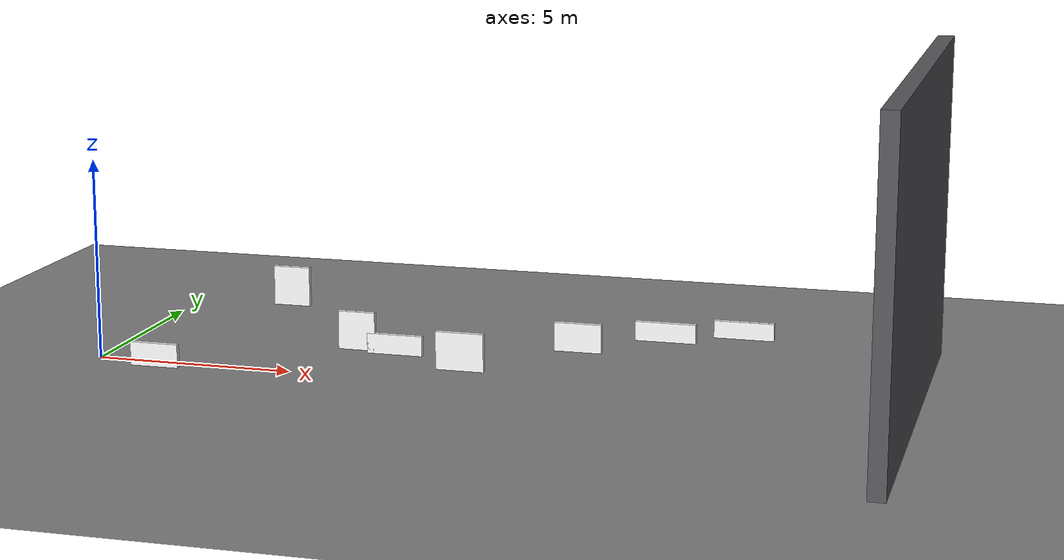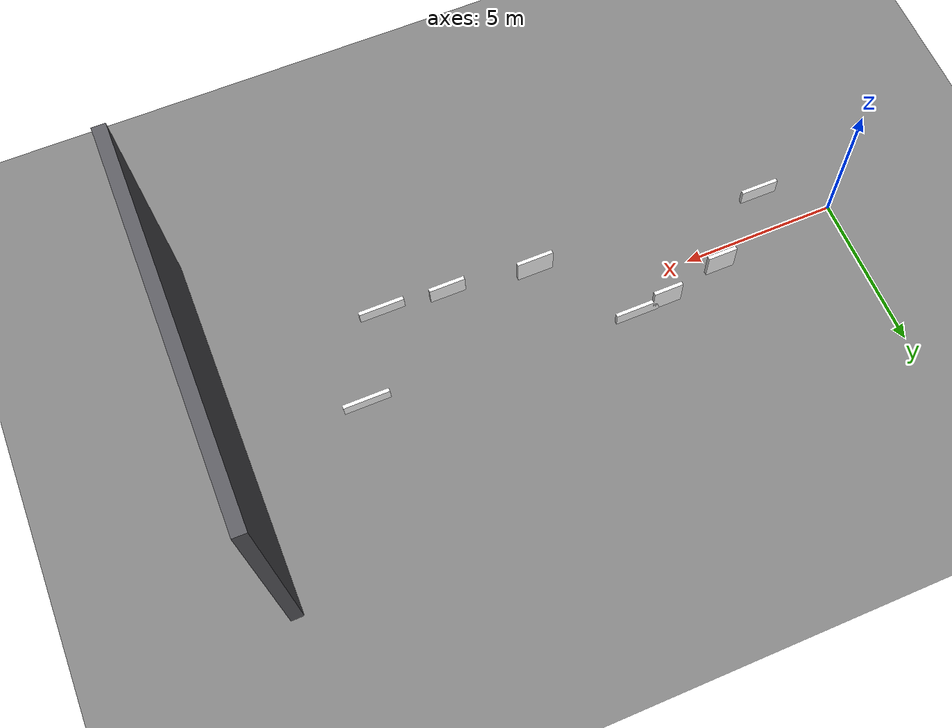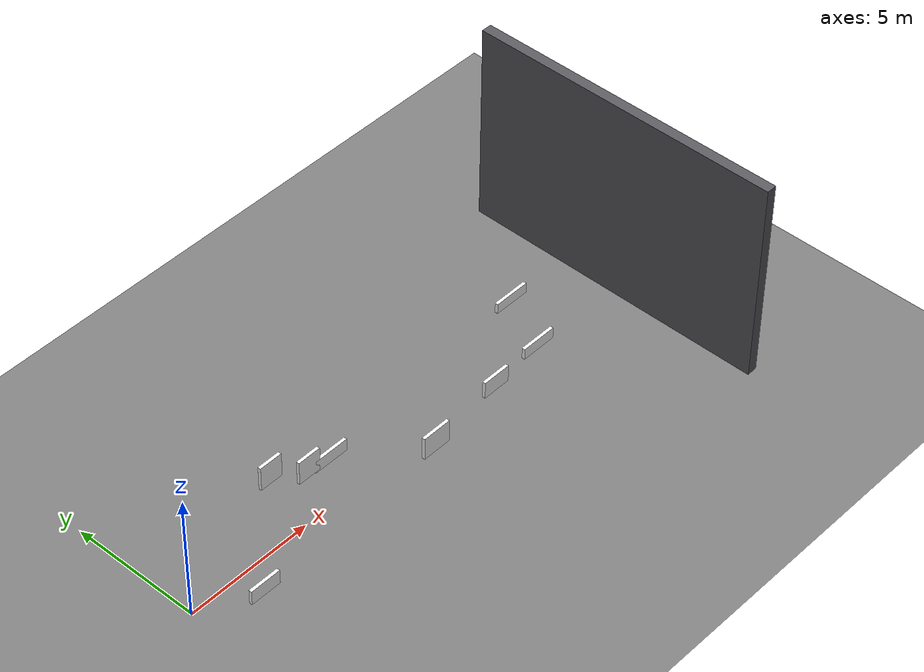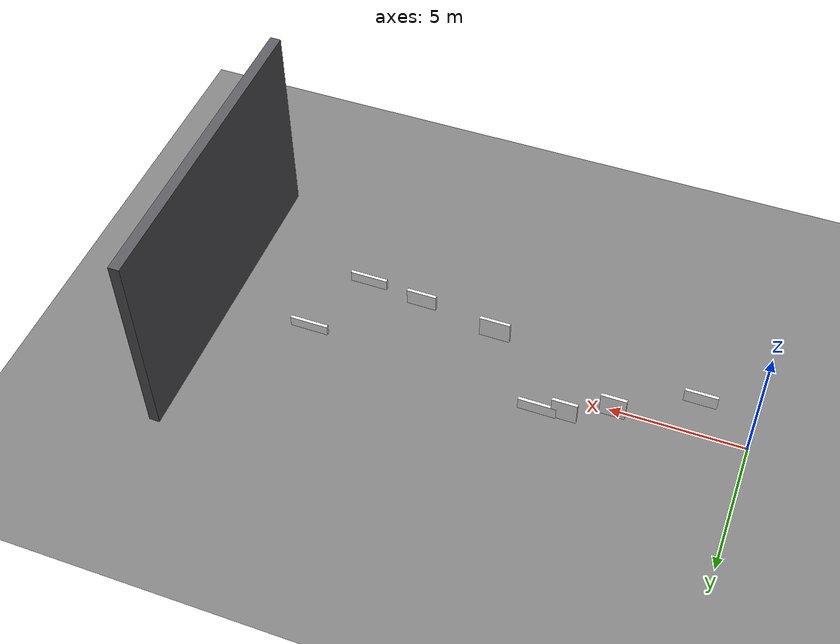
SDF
<sdf version="1.9">
 <world name="tunnel_world">
  <model name="ground_plane">
   <static>true</static>
   <link name="ground">
    <collision name="ground_collision">
     <geometry><plane><normal>0 0 1</normal><size>100 100</size></plane></geometry>
    </collision>
    <visual name="ground_visual">
     <geometry><plane><normal>0 0 1</normal><size>100 100</size></plane></geometry>
     <material>
      <ambient>0.5 0.5 0.5</ambient>
      <diffuse>0.50 0.50 0.50 1</diffuse>
      <emissive>0.08 0.08 0.08 1</emissive>
      <specular>0.05 0.05 0.05 1</specular>
      <pbr>
       <metal>
        <albedo_map>file:///home/ylf/workspace/inspection_robot/worlds/textures/tunnel_concrete_floor.png</albedo_map>
        <metalness>0.0</metalness>
        <roughness>0.9</roughness>
       </metal>
      </pbr>
     </material>
    </visual>
   </link>
  </model>
  <model name="tunnel_end_wall_far">
   <static>true</static>
   <pose>20 0 3.5 0 0 0</pose>
   <link name="wall">
    <visual name="visual">
     <geometry><box><size>0.4 12 9</size></box></geometry>
     <material>
      <diffuse>0.35 0.35 0.37 1</diffuse>
      <emissive>0.06 0.06 0.06 1</emissive>
      <ambient>0.35 0.35 0.37</ambient>
     </material>
    </visual>
    <collision name="collision"><geometry><box><size>0.4 12 9</size></box></geometry></collision>
   </link>
  </model>
  <model name="defect_spalling_01">
   <static>true</static>
   <pose>2.0 -1.192 0.535 0 0 0</pose>
   <link name="link">
    <visual name="visual">
     <geometry><box><size>1.218 0.12 0.58</size></box></geometry>
     <material>
      <ambient>1 1 1 1</ambient>
      <diffuse>1 1 1 1</diffuse>
      <emissive>0.05 0.05 0.05 1</emissive>
      <specular>0.05 0.05 0.05 1</specular>
      <pbr>
       <metal>
        <albedo_map>file:///home/ylf/workspace/inspection_robot/data_gen/textures_spalling/spalling_4.png</albedo_map>
        <metalness>0.0</metalness>
        <roughness>0.9</roughness>
       </metal>
      </pbr>
     </material>
    </visual>
    <collision name="collision"><geometry><box><size>1.218 0.12 0.58</size></box></geometry></collision>
   </link>
  </model>
  <model name="defect_spalling_02">
   <static>true</static>
   <pose>4.685 1.192 1.869 0 0 0</pose>
   <link name="link">
    <visual name="visual">
     <geometry><box><size>0.915 0.12 0.965</size></box></geometry>
     <material>
      <ambient>1 1 1 1</ambient>
      <diffuse>1 1 1 1</diffuse>
      <emissive>0.05 0.05 0.05 1</emissive>
      <specular>0.05 0.05 0.05 1</specular>
      <pbr>
       <metal>
        <albedo_map>file:///home/ylf/workspace/inspection_robot/data_gen/textures_spalling/spalling_1.png</albedo_map>
        <metalness>0.0</metalness>
        <roughness>0.9</roughness>
       </metal>
      </pbr>
     </material>
    </visual>
    <collision name="collision"><geometry><box><size>0.915 0.12 0.965</size></box></geometry></collision>
   </link>
  </model>
  <model name="defect_spalling_03">
   <static>true</static>
   <pose>6.355 1.192 0.838 0 0 0</pose>
   <link name="link">
    <visual name="visual">
     <geometry><box><size>0.935 0.12 0.957</size></box></geometry>
     <material>
      <ambient>1 1 1 1</ambient>
      <diffuse>1 1 1 1</diffuse>
      <emissive>0.05 0.05 0.05 1</emissive>
      <specular>0.05 0.05 0.05 1</specular>
      <pbr>
       <metal>
        <albedo_map>file:///home/ylf/workspace/inspection_robot/data_gen/textures_spalling/spalling_4.png</albedo_map>
        <metalness>0.0</metalness>
        <roughness>0.9</roughness>
       </metal>
      </pbr>
     </material>
    </visual>
    <collision name="collision"><geometry><box><size>0.935 0.12 0.957</size></box></geometry></collision>
   </link>
  </model>
  <model name="defect_spalling_04">
   <static>true</static>
   <pose>7.336 1.192 0.551 0 0 0</pose>
   <link name="link">
    <visual name="visual">
     <geometry><box><size>1.413 0.12 0.5</size></box></geometry>
     <material>
      <ambient>1 1 1 1</ambient>
      <diffuse>1 1 1 1</diffuse>
      <emissive>0.05 0.05 0.05 1</emissive>
      <specular>0.05 0.05 0.05 1</specular>
      <pbr>
       <metal>
        <albedo_map>file:///home/ylf/workspace/inspection_robot/data_gen/textures_spalling/spalling_3.png</albedo_map>
        <metalness>0.0</metalness>
        <roughness>0.9</roughness>
       </metal>
      </pbr>
     </material>
    </visual>
    <collision name="collision"><geometry><box><size>1.413 0.12 0.5</size></box></geometry></collision>
   </link>
  </model>
  <model name="defect_spalling_05">
   <static>true</static>
   <pose>9.73 -1.192 1.158 0 0 0</pose>
   <link name="link">
    <visual name="visual">
     <geometry><box><size>1.157 0.12 0.908</size></box></geometry>
     <material>
      <ambient>1 1 1 1</ambient>
      <diffuse>1 1 1 1</diffuse>
      <emissive>0.05 0.05 0.05 1</emissive>
      <specular>0.05 0.05 0.05 1</specular>
      <pbr>
       <metal>
        <albedo_map>file:///home/ylf/workspace/inspection_robot/data_gen/textures_spalling/spalling_1.png</albedo_map>
        <metalness>0.0</metalness>
        <roughness>0.9</roughness>
       </metal>
      </pbr>
     </material>
    </visual>
    <collision name="collision"><geometry><box><size>1.157 0.12 0.908</size></box></geometry></collision>
   </link>
  </model>
  <model name="defect_spalling_06">
   <static>true</static>
   <pose>12.564 -1.192 1.693 0 0 0</pose>
   <link name="link">
    <visual name="visual">
     <geometry><box><size>1.117 0.12 0.671</size></box></geometry>
     <material>
      <ambient>1 1 1 1</ambient>
      <diffuse>1 1 1 1</diffuse>
      <emissive>0.05 0.05 0.05 1</emissive>
      <specular>0.05 0.05 0.05 1</specular>
      <pbr>
       <metal>
        <albedo_map>file:///home/ylf/workspace/inspection_robot/data_gen/textures_spalling/spalling_5.png</albedo_map>
        <metalness>0.0</metalness>
        <roughness>0.9</roughness>
       </metal>
      </pbr>
     </material>
    </visual>
    <collision name="collision"><geometry><box><size>1.117 0.12 0.671</size></box></geometry></collision>
   </link>
  </model>
  <model name="defect_spalling_07">
   <static>true</static>
   <pose>14.614 -1.192 1.959 0 0 0</pose>
   <link name="link">
    <visual name="visual">
     <geometry><box><size>1.393 0.12 0.442</size></box></geometry>
     <material>
      <ambient>1 1 1 1</ambient>
      <diffuse>1 1 1 1</diffuse>
      <emissive>0.05 0.05 0.05 1</emissive>
      <specular>0.05 0.05 0.05 1</specular>
      <pbr>
       <metal>
        <albedo_map>file:///home/ylf/workspace/inspection_robot/data_gen/textures_spalling/spalling_3.png</albedo_map>
        <metalness>0.0</metalness>
        <roughness>0.9</roughness>
       </metal>
      </pbr>
     </material>
    </visual>
    <collision name="collision"><geometry><box><size>1.393 0.12 0.442</size></box></geometry></collision>
   </link>
  </model>
  <model name="defect_spalling_08">
   <static>true</static>
   <pose>16.0 1.192 1.497 0 0 0</pose>
   <link name="link">
    <visual name="visual">
     <geometry><box><size>1.426 0.12 0.412</size></box></geometry>
     <material>
      <ambient>1 1 1 1</ambient>
      <diffuse>1 1 1 1</diffuse>
      <emissive>0.05 0.05 0.05 1</emissive>
      <specular>0.05 0.05 0.05 1</specular>
      <pbr>
       <metal>
        <albedo_map>file:///home/ylf/workspace/inspection_robot/data_gen/textures_spalling/spalling_3.png</albedo_map>
        <metalness>0.0</metalness>
        <roughness>0.9</roughness>
       </metal>
      </pbr>
     </material>
    </visual>
    <collision name="collision"><geometry><box><size>1.426 0.12 0.412</size></box></geometry></collision>
   </link>
  </model>
 </world>
</sdf>
